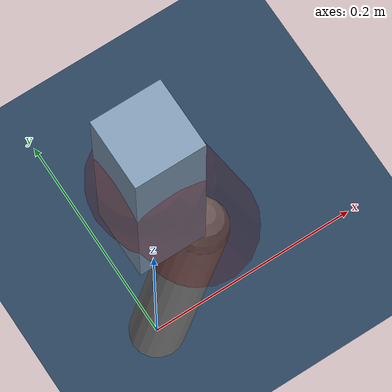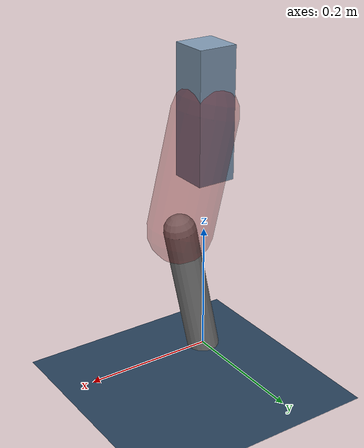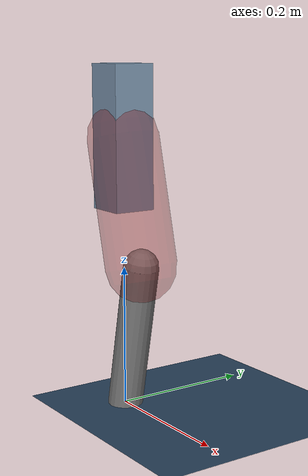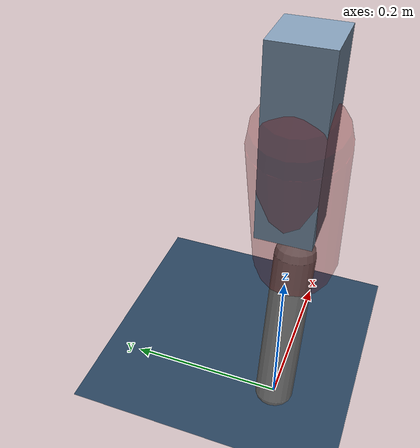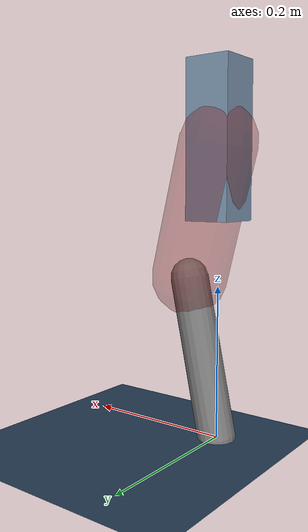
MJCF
<mujoco model="Hopper2D">
	<compiler inertiafromgeom="true" angle="radian" />
	<option timestep="0.001" integrator="implicit" cone="elliptic" solver="Newton" tolerance="1e-10" />

	<default>
		<geom contype="1" conaffinity="1" condim="3" friction="2 0.005 0.0001" solref="0.005 1" />
		<joint limited="true" damping="0.1" />
	</default>

	<asset>
		<texture name="skybox" type="skybox" builtin="gradient" rgb1=".4 .6 .8" rgb2="0 0 0" width="800" height="800" />
		<texture name="grid" type="2d" builtin="checker" rgb1=".1 .2 .3" rgb2=".2 .3 .4" width="300" height="300" mark="edge" markrgb=".2 .3 .4" />
		<material name="ground" texture="grid" texrepeat="1 1" texuniform="true" reflectance="0.1" />
		<material name="leg" rgba="0.5 0.6 0.7 1" />
	</asset>

	<worldbody>

		<geom name="floor" type="plane" size="5 5 0.25" material="ground" />

		<light directional="false" diffuse="0.8 0.8 0.8" specular="0.3 0.3 0.3" pos="0 0 2" dir="0 0 -1" />
		<light mode="targetbodycom" target="base" directional="false" diffuse="0.8 0.8 0.8" specular="0.3 0.3 0.3" pos="0 0 2" dir="0 0 -1" />

		<camera name="fixed" pos="0 -2 1" xyaxes="1 0 0 0 0 1" />
		<camera name="tracking" mode="trackcom" pos="0 -3 1" />

		<body name="root" pos="0 0 0.38420438522977296">
			<joint name="slide_x" type="slide" axis="1 0 0" range="-100 100" />
			<joint name="slide_z" type="slide" axis="0 0 1" range="0 10" />

			<body name="base" pos="0 0 0">
				<geom name="torso" type="box" size="0.03 0.03 0.1" mass="1.8119999999999998" material="leg" />

				<body name="link1" pos="0 0 0" euler="0 1.3246599954997007 0">
					<joint type="hinge" axis="0 -1 0" pos="0 0 0" name="hinge1" limited="true" range="-3.14 3.14" stiffness="0" damping="0.1" />
					<geom name="thigh" type="capsule" fromto="0 0 0 0.18035832698375828 0 0" size="0.05" rgba="0.5 0 0 0.3" mass="0.6813599847610199" />

					<body name="link2" pos="0.18035832698375828 0 0" euler="0 0.4531132386845327 0">
						<joint type="hinge" axis="0 -1 0" pos="0 0 0" name="hinge2" limited="true" range="-3.14 3.14" stiffness="0" damping="0.1" />
						<geom name="shank" type="capsule" fromto="0 0 0 0.2138460582460147 0 0" size="0.025" mass="0.41256145242141323" />

					</body>
				</body>
			</body>
		</body>
	</worldbody>

	<actuator>
		<motor name="torque1" joint="hinge1" ctrlrange="-46.401944457661955 46.401944457661955" ctrllimited="true" gear="1" />
		<motor name="torque2" joint="hinge2" ctrlrange="-31.24283662736687 31.24283662736687" ctrllimited="true" gear="1" />
	</actuator>
</mujoco>
